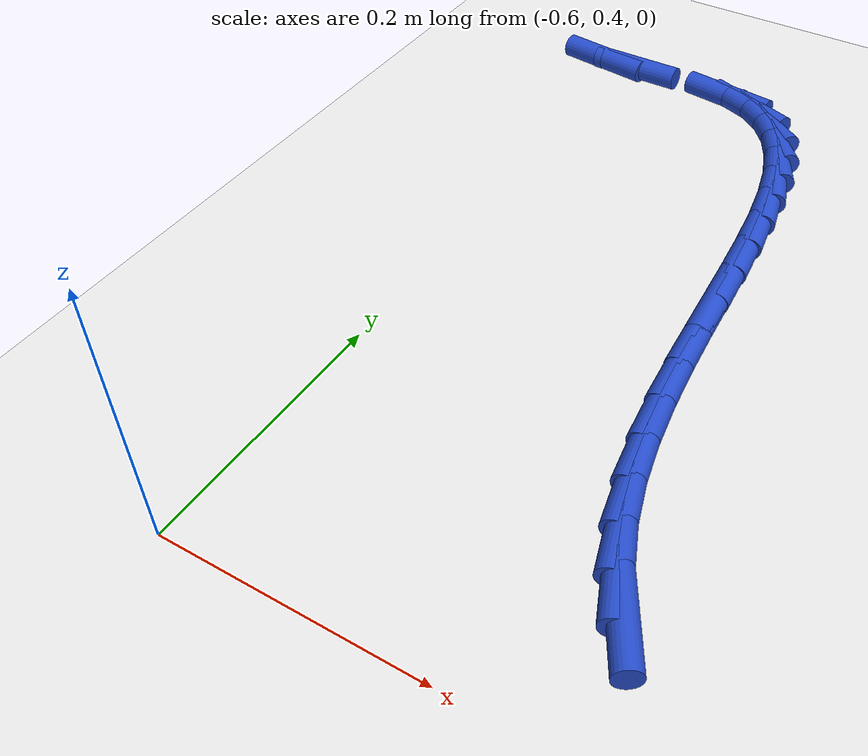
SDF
<sdf version="1.6">
 <world name="default">
  <model name="ground_plane">
   <static>1</static>
   <link name="link">
    <collision name="collision">
     <geometry><plane><normal>0 0 1</normal><size>100 100</size></plane></geometry>
     <surface><friction><ode><mu>100</mu><mu2>50</mu2></ode></friction></surface>
    </collision>
    <visual name="visual">
     <cast_shadows>0</cast_shadows>
     <geometry><plane><normal>0 0 1</normal><size>100 100</size></plane></geometry>
     <material>
      <script><uri>file://media/materials/scripts/gazebo.material</uri><name>Gazebo/WhiteGlow</name></script>
     </material>
    </visual>
   </link>
  </model>
  <model name="line">
   <link name="link_21">
    <pose>-0.32954748573925646 0.4858050027504334 0.01 0 1.57 -1.017122977381416</pose>
    <collision name="collision">
     <geometry><cylinder><radius>0.01</radius><length>0.08</length></cylinder></geometry>
    </collision>
    <visual name="visual">
     <material>
      <script><name>Gazebo/Blue</name><uri>file://media/materials/scripts/gazebo.material</uri></script>
     </material>
     <geometry><cylinder><radius>0.01</radius><length>0.08</length></cylinder></geometry>
    </visual>
   </link>
   <link name="link_22">
    <pose>-0.34588039780600555 0.5122263608968104 0.01 0 1.57 -1.1549507821745515</pose>
    <collision name="collision">
     <geometry><cylinder><radius>0.01</radius><length>0.08</length></cylinder></geometry>
    </collision>
    <visual name="visual">
     <material>
      <script><name>Gazebo/Blue</name><uri>file://media/materials/scripts/gazebo.material</uri></script>
     </material>
     <geometry><cylinder><radius>0.01</radius><length>0.08</length></cylinder></geometry>
    </visual>
   </link>
   <link name="link_23">
    <pose>-0.35881236914581977 0.5415107972415587 0.01 0 1.57 -1.2667472253994232</pose>
    <collision name="collision">
     <geometry><cylinder><radius>0.01</radius><length>0.08</length></cylinder></geometry>
    </collision>
    <visual name="visual">
     <material>
      <script><name>Gazebo/Blue</name><uri>file://media/materials/scripts/gazebo.material</uri></script>
     </material>
     <geometry><cylinder><radius>0.01</radius><length>0.08</length></cylinder></geometry>
    </visual>
   </link>
   <link name="link_24">
    <pose>-0.3687634733122259 0.5732245939136491 0.01 0 1.57 -1.3526581128357738</pose>
    <collision name="collision">
     <geometry><cylinder><radius>0.01</radius><length>0.08</length></cylinder></geometry>
    </collision>
    <visual name="visual">
     <material>
      <script><name>Gazebo/Blue</name><uri>file://media/materials/scripts/gazebo.material</uri></script>
     </material>
     <geometry><cylinder><radius>0.01</radius><length>0.08</length></cylinder></geometry>
    </visual>
   </link>
   <link name="link_25">
    <pose>-0.37622235657713216 0.6068738916841132 0.01 0 1.57 -1.4165688702075998</pose>
    <collision name="collision">
     <geometry><cylinder><radius>0.01</radius><length>0.08</length></cylinder></geometry>
    </collision>
    <visual name="visual">
     <material>
      <script><name>Gazebo/Blue</name><uri>file://media/materials/scripts/gazebo.material</uri></script>
     </material>
     <geometry><cylinder><radius>0.01</radius><length>0.08</length></cylinder></geometry>
    </visual>
   </link>
   <link name="link_26">
    <pose>-0.3816776652124463 0.6419648313239825 0.01 0 1.57 -1.4618915231604726</pose>
    <collision name="collision">
     <geometry><cylinder><radius>0.01</radius><length>0.08</length></cylinder></geometry>
    </collision>
    <visual name="visual">
     <material>
      <script><name>Gazebo/Blue</name><uri>file://media/materials/scripts/gazebo.material</uri></script>
     </material>
     <geometry><cylinder><radius>0.01</radius><length>0.08</length></cylinder></geometry>
    </visual>
   </link>
   <link name="link_27">
    <pose>-0.38561804549007617 0.6780035536042887 0.01 0 1.57 -1.4911110204981752</pose>
    <collision name="collision">
     <geometry><cylinder><radius>0.01</radius><length>0.08</length></cylinder></geometry>
    </collision>
    <visual name="visual">
     <material>
      <script><name>Gazebo/Blue</name><uri>file://media/materials/scripts/gazebo.material</uri></script>
     </material>
     <geometry><cylinder><radius>0.01</radius><length>0.08</length></cylinder></geometry>
    </visual>
   </link>
   <link name="link_28">
    <pose>-0.3885321436819299 0.7144961992960633 0.01 0 1.57 -1.5056954279205166</pose>
    <collision name="collision">
     <geometry><cylinder><radius>0.01</radius><length>0.08</length></cylinder></geometry>
    </collision>
    <visual name="visual">
     <material>
      <script><name>Gazebo/Blue</name><uri>file://media/materials/scripts/gazebo.material</uri></script>
     </material>
     <geometry><cylinder><radius>0.01</radius><length>0.08</length></cylinder></geometry>
    </visual>
   </link>
   <link name="link_29">
    <pose>-0.3909086060599153 0.750948909170338 0.01 0 1.57 -1.5060888177872214</pose>
    <collision name="collision">
     <geometry><cylinder><radius>0.01</radius><length>0.08</length></cylinder></geometry>
    </collision>
    <visual name="visual">
     <material>
      <script><name>Gazebo/Blue</name><uri>file://media/materials/scripts/gazebo.material</uri></script>
     </material>
     <geometry><cylinder><radius>0.01</radius><length>0.08</length></cylinder></geometry>
    </visual>
   </link>
   <link name="link_30">
    <pose>-0.39323607889594026 0.7868678239981441 0.01 0 1.57 -1.4916547336572736</pose>
    <collision name="collision">
     <geometry><cylinder><radius>0.01</radius><length>0.08</length></cylinder></geometry>
    </collision>
    <visual name="visual">
     <material>
      <script><name>Gazebo/Blue</name><uri>file://media/materials/scripts/gazebo.material</uri></script>
     </material>
     <geometry><cylinder><radius>0.01</radius><length>0.08</length></cylinder></geometry>
    </visual>
   </link>
   <link name="link_31">
    <pose>-0.3960032084619128 0.8217590845505134 0.01 0 1.57 -1.4605037289413374</pose>
    <collision name="collision">
     <geometry><cylinder><radius>0.01</radius><length>0.08</length></cylinder></geometry>
    </collision>
    <visual name="visual">
     <material>
      <script><name>Gazebo/Blue</name><uri>file://media/materials/scripts/gazebo.material</uri></script>
     </material>
     <geometry><cylinder><radius>0.01</radius><length>0.08</length></cylinder></geometry>
    </visual>
   </link>
   <link name="link_32">
    <pose>-0.39969864102974073 0.8551288315984773 0.01 0 1.57 -1.4091670309096473</pose>
    <collision name="collision">
     <geometry><cylinder><radius>0.01</radius><length>0.08</length></cylinder></geometry>
    </collision>
    <visual name="visual">
     <material>
      <script><name>Gazebo/Blue</name><uri>file://media/materials/scripts/gazebo.material</uri></script>
     </material>
     <geometry><cylinder><radius>0.01</radius><length>0.08</length></cylinder></geometry>
    </visual>
   </link>
   <link name="link_33">
    <pose>-0.4048110228713321 0.8864832059130675 0.01 0 1.57 -1.3321349160981737</pose>
    <collision name="collision">
     <geometry><cylinder><radius>0.01</radius><length>0.08</length></cylinder></geometry>
    </collision>
    <visual name="visual">
     <material>
      <script><name>Gazebo/Blue</name><uri>file://media/materials/scripts/gazebo.material</uri></script>
     </material>
     <geometry><cylinder><radius>0.01</radius><length>0.08</length></cylinder></geometry>
    </visual>
   </link>
   <link name="link_34">
    <pose>-0.4118290002585948 0.9153283482653155 0.01 0 1.57 -1.2215090116597271</pose>
    <collision name="collision">
     <geometry><cylinder><radius>0.01</radius><length>0.08</length></cylinder></geometry>
    </collision>
    <visual name="visual">
     <material>
      <script><name>Gazebo/Blue</name><uri>file://media/materials/scripts/gazebo.material</uri></script>
     </material>
     <geometry><cylinder><radius>0.01</radius><length>0.08</length></cylinder></geometry>
    </visual>
   </link>
   <link name="link_35">
    <pose>-0.4212412194634367 0.9411703994262525 0.01 0 1.57 -1.0677709668213629</pose>
    <collision name="collision">
     <geometry><cylinder><radius>0.01</radius><length>0.08</length></cylinder></geometry>
    </collision>
    <visual name="visual">
     <material>
      <script><name>Gazebo/Blue</name><uri>file://media/materials/scripts/gazebo.material</uri></script>
     </material>
     <geometry><cylinder><radius>0.01</radius><length>0.08</length></cylinder></geometry>
    </visual>
   </link>
   <link name="link_36">
    <pose>-0.43353632675776577 0.9635155001669107 0.01 0 1.57 -0.8642343055578869</pose>
    <collision name="collision">
     <geometry><cylinder><radius>0.01</radius><length>0.08</length></cylinder></geometry>
    </collision>
    <visual name="visual">
     <material>
      <script><name>Gazebo/Blue</name><uri>file://media/materials/scripts/gazebo.material</uri></script>
     </material>
     <geometry><cylinder><radius>0.01</radius><length>0.08</length></cylinder></geometry>
    </visual>
   </link>
   <link name="link_37">
    <pose>-0.44920296841348983 0.9818697912583212 0.01 0 1.57 -0.6175957991414567</pose>
    <collision name="collision">
     <geometry><cylinder><radius>0.01</radius><length>0.08</length></cylinder></geometry>
    </collision>
    <visual name="visual">
     <material>
      <script><name>Gazebo/Blue</name><uri>file://media/materials/scripts/gazebo.material</uri></script>
     </material>
     <geometry><cylinder><radius>0.01</radius><length>0.08</length></cylinder></geometry>
    </visual>
   </link>
   <link name="link_38">
    <pose>-0.468729790702517 0.995739413471516 0.01 0 1.57 -0.3564820017984597</pose>
    <collision name="collision">
     <geometry><cylinder><radius>0.01</radius><length>0.08</length></cylinder></geometry>
    </collision>
    <visual name="visual">
     <material>
      <script><name>Gazebo/Blue</name><uri>file://media/materials/scripts/gazebo.material</uri></script>
     </material>
     <geometry><cylinder><radius>0.01</radius><length>0.08</length></cylinder></geometry>
    </visual>
   </link>
   <link name="link_39">
    <pose>-0.4926054398967551 1.004630507577526 0.01 0 1.57 -0.1285843808246256</pose>
    <collision name="collision">
     <geometry><cylinder><radius>0.01</radius><length>0.08</length></cylinder></geometry>
    </collision>
    <visual name="visual">
     <material>
      <script><name>Gazebo/Blue</name><uri>file://media/materials/scripts/gazebo.material</uri></script>
     </material>
     <geometry><cylinder><radius>0.01</radius><length>0.08</length></cylinder></geometry>
    </visual>
   </link>
   <link name="link_42">
    <pose>-0.5859259888014531 1.0072892638465933 0.01 0 1.57 -0.0026967857543557204</pose>
    <collision name="collision">
     <geometry><cylinder><radius>0.01</radius><length>0.08</length></cylinder></geometry>
    </collision>
    <visual name="visual">
     <material>
      <script><name>Gazebo/Blue</name><uri>file://media/materials/scripts/gazebo.material</uri></script>
     </material>
     <geometry><cylinder><radius>0.01</radius><length>0.08</length></cylinder></geometry>
    </visual>
   </link>
   <link name="link_43">
    <pose>-0.6182785342259401 1.0073765119417197 0.01 0 1.57 -0.12368729279589362</pose>
    <collision name="collision">
     <geometry><cylinder><radius>0.01</radius><length>0.08</length></cylinder></geometry>
    </collision>
    <visual name="visual">
     <material>
      <script><name>Gazebo/Blue</name><uri>file://media/materials/scripts/gazebo.material</uri></script>
     </material>
     <geometry><cylinder><radius>0.01</radius><length>0.08</length></cylinder></geometry>
    </visual>
   </link>
  </model>
 </world>
</sdf>
